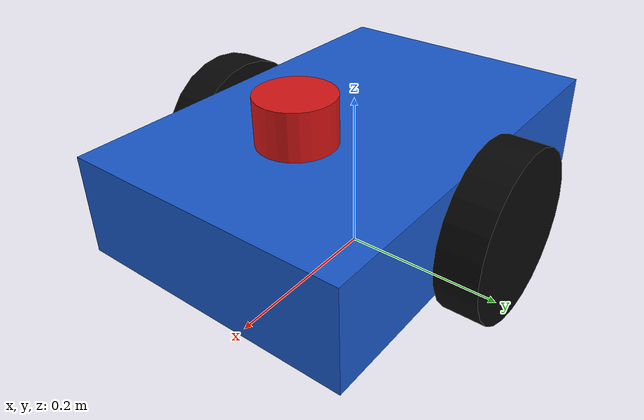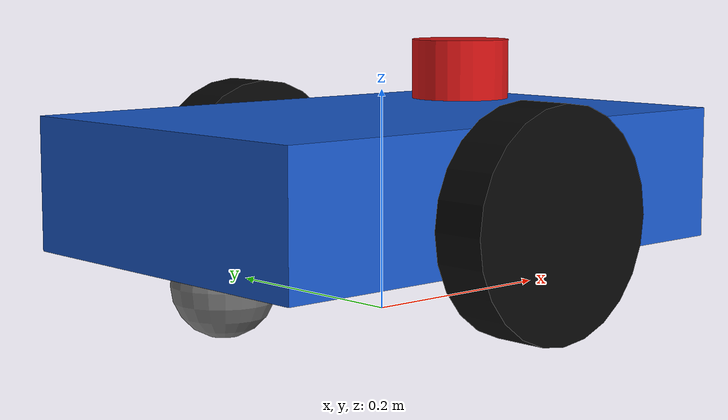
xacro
<?xml version="1.0"?>
<robot xmlns:xacro="http://www.ros.org/wiki/xacro" name="course_bot">
  <xacro:property name="base_length" value="0.50"/>
  <xacro:property name="base_width" value="0.34"/>
  <xacro:property name="base_height" value="0.12"/>
  <xacro:property name="base_mass" value="8.0"/>
  <xacro:property name="wheel_radius" value="0.10"/>
  <xacro:property name="wheel_width" value="0.05"/>
  <xacro:property name="wheel_mass" value="0.8"/>
  <xacro:property name="wheel_y" value="0.195"/>
  <xacro:property name="caster_radius" value="0.045"/>
  <xacro:property name="caster_x" value="0.18"/>

  <xacro:macro name="box_inertia" params="mass x y z">
    <inertia
      ixx="${mass * (y * y + z * z) / 12.0}" ixy="0.0" ixz="0.0"
      iyy="${mass * (x * x + z * z) / 12.0}" iyz="0.0"
      izz="${mass * (x * x + y * y) / 12.0}"/>
  </xacro:macro>

  <xacro:macro name="wheel" params="side y">
    <link name="${side}_wheel_link">
      <visual>
        <origin rpy="1.570796 0 0"/>
        <geometry><cylinder radius="${wheel_radius}" length="${wheel_width}"/></geometry>
        <material name="wheel_black"><color rgba="0.03 0.03 0.03 1"/></material>
      </visual>
      <collision>
        <origin rpy="1.570796 0 0"/>
        <geometry><cylinder radius="${wheel_radius}" length="${wheel_width}"/></geometry>
      </collision>
      <inertial>
        <mass value="${wheel_mass}"/>
        <inertia
          ixx="${wheel_mass * (3 * wheel_radius * wheel_radius + wheel_width * wheel_width) / 12.0}"
          ixy="0" ixz="0"
          iyy="${wheel_mass * wheel_radius * wheel_radius / 2.0}"
          iyz="0"
          izz="${wheel_mass * (3 * wheel_radius * wheel_radius + wheel_width * wheel_width) / 12.0}"/>
      </inertial>
    </link>
    <joint name="${side}_wheel_joint" type="continuous">
      <parent link="base_link"/>
      <child link="${side}_wheel_link"/>
      <origin xyz="0 ${y} -0.02" rpy="0 0 0"/>
      <axis xyz="0 1 0"/>
      <dynamics damping="0.05" friction="0.0"/>
    </joint>
  </xacro:macro>

  <link name="base_footprint"/>
  <joint name="base_footprint_joint" type="fixed">
    <parent link="base_footprint"/>
    <child link="base_link"/>
    <origin xyz="0 0 0.12" rpy="0 0 0"/>
  </joint>

  <link name="base_link">
    <visual>
      <geometry><box size="${base_length} ${base_width} ${base_height}"/></geometry>
      <material name="course_bot_blue"><color rgba="0.10 0.35 0.80 1"/></material>
    </visual>
    <collision><geometry><box size="${base_length} ${base_width} ${base_height}"/></geometry></collision>
    <inertial>
      <mass value="${base_mass}"/>
      <xacro:box_inertia mass="${base_mass}" x="${base_length}" y="${base_width}" z="${base_height}"/>
    </inertial>
  </link>

  <xacro:wheel side="left" y="${wheel_y}"/>
  <xacro:wheel side="right" y="${-wheel_y}"/>

  <!-- 后辅助球：与两个驱动轮一起支撑车尾，球形碰撞体允许向任意方向滑动。 -->
  <link name="caster_link">
    <visual><geometry><sphere radius="${caster_radius}"/></geometry><material name="caster_gray"><color rgba="0.45 0.45 0.45 1"/></material></visual>
    <collision><geometry><sphere radius="${caster_radius}"/></geometry></collision>
    <inertial><mass value="0.2"/><inertia ixx="0.000162" ixy="0" ixz="0" iyy="0.000162" iyz="0" izz="0.000162"/></inertial>
  </link>
  <joint name="caster_joint" type="fixed">
    <parent link="base_link"/><child link="caster_link"/>
    <origin xyz="${-caster_x} 0 -0.075" rpy="0 0 0"/>
  </joint>

  <!-- 前辅助球：原模型前方没有落地点，减速时底盘容易向前翻。 -->
  <!-- 前后辅助球与左右驱动轮的最低点都在 base_footprint 的地面高度。 -->
  <link name="front_caster_link">
    <visual><geometry><sphere radius="${caster_radius}"/></geometry><material name="caster_gray"><color rgba="0.45 0.45 0.45 1"/></material></visual>
    <collision><geometry><sphere radius="${caster_radius}"/></geometry></collision>
    <inertial><mass value="0.2"/><inertia ixx="0.000162" ixy="0" ixz="0" iyy="0.000162" iyz="0" izz="0.000162"/></inertial>
  </link>
  <joint name="front_caster_joint" type="fixed">
    <parent link="base_link"/><child link="front_caster_link"/>
    <origin xyz="${caster_x} 0 -0.075" rpy="0 0 0"/>
  </joint>

  <link name="laser_link">
    <visual><geometry><cylinder radius="0.045" length="0.055"/></geometry><material name="laser_red"><color rgba="0.85 0.08 0.08 1"/></material></visual>
    <collision><geometry><cylinder radius="0.045" length="0.055"/></geometry></collision>
    <inertial><mass value="0.15"/><inertia ixx="0.000136" ixy="0" ixz="0" iyy="0.000136" iyz="0" izz="0.000152"/></inertial>
  </link>
  <joint name="laser_joint" type="fixed">
    <parent link="base_link"/><child link="laser_link"/>
    <origin xyz="0.10 0 0.095" rpy="0 0 0"/>
  </joint>

  <gazebo reference="base_link"><material>Gazebo/Blue</material></gazebo>
  <gazebo reference="left_wheel_link"><material>Gazebo/Black</material><mu1>1.0</mu1><mu2>1.0</mu2></gazebo>
  <gazebo reference="right_wheel_link"><material>Gazebo/Black</material><mu1>1.0</mu1><mu2>1.0</mu2></gazebo>
  <gazebo reference="caster_link"><material>Gazebo/Grey</material><mu1>0.02</mu1><mu2>0.02</mu2></gazebo>
  <gazebo reference="front_caster_link"><material>Gazebo/Grey</material><mu1>0.02</mu1><mu2>0.02</mu2></gazebo>
  <gazebo reference="laser_link">
    <material>Gazebo/Red</material>
    <sensor name="course_bot_laser" type="ray">
      <!-- 课程场地使用 360 线、10 Hz；边界墙提供稳定回波，不额外增加虚拟机负担。 -->
      <always_on>true</always_on><update_rate>10</update_rate><visualize>true</visualize>
      <ray>
        <scan><horizontal><samples>360</samples><resolution>1</resolution><min_angle>-3.14159</min_angle><max_angle>3.14159</max_angle></horizontal></scan>
        <range><min>0.12</min><max>12.0</max><resolution>0.01</resolution></range>
        <noise><type>gaussian</type><mean>0.0</mean><stddev>0.01</stddev></noise>
      </ray>
      <plugin name="course_bot_laser_plugin" filename="libgazebo_ros_ray_sensor.so">
        <ros><argument>~/out:=scan</argument></ros>
        <output_type>sensor_msgs/LaserScan</output_type><frame_name>laser_link</frame_name>
      </plugin>
    </sensor>
  </gazebo>

  <gazebo>
    <plugin name="course_bot_diff_drive" filename="libgazebo_ros_diff_drive.so">
      <ros><namespace>/</namespace></ros>
      <update_rate>50</update_rate>
      <left_joint>left_wheel_joint</left_joint><right_joint>right_wheel_joint</right_joint>
      <wheel_separation>${2.0 * wheel_y}</wheel_separation><wheel_diameter>${2.0 * wheel_radius}</wheel_diameter>
      <max_wheel_torque>20.0</max_wheel_torque><max_wheel_acceleration>5.0</max_wheel_acceleration>
      <command_topic>cmd_vel</command_topic><odometry_topic>odom</odometry_topic>
      <odometry_frame>odom</odometry_frame><robot_base_frame>base_footprint</robot_base_frame>
      <publish_odom>true</publish_odom><publish_odom_tf>true</publish_odom_tf><publish_wheel_tf>true</publish_wheel_tf>
    </plugin>
  </gazebo>
</robot>
